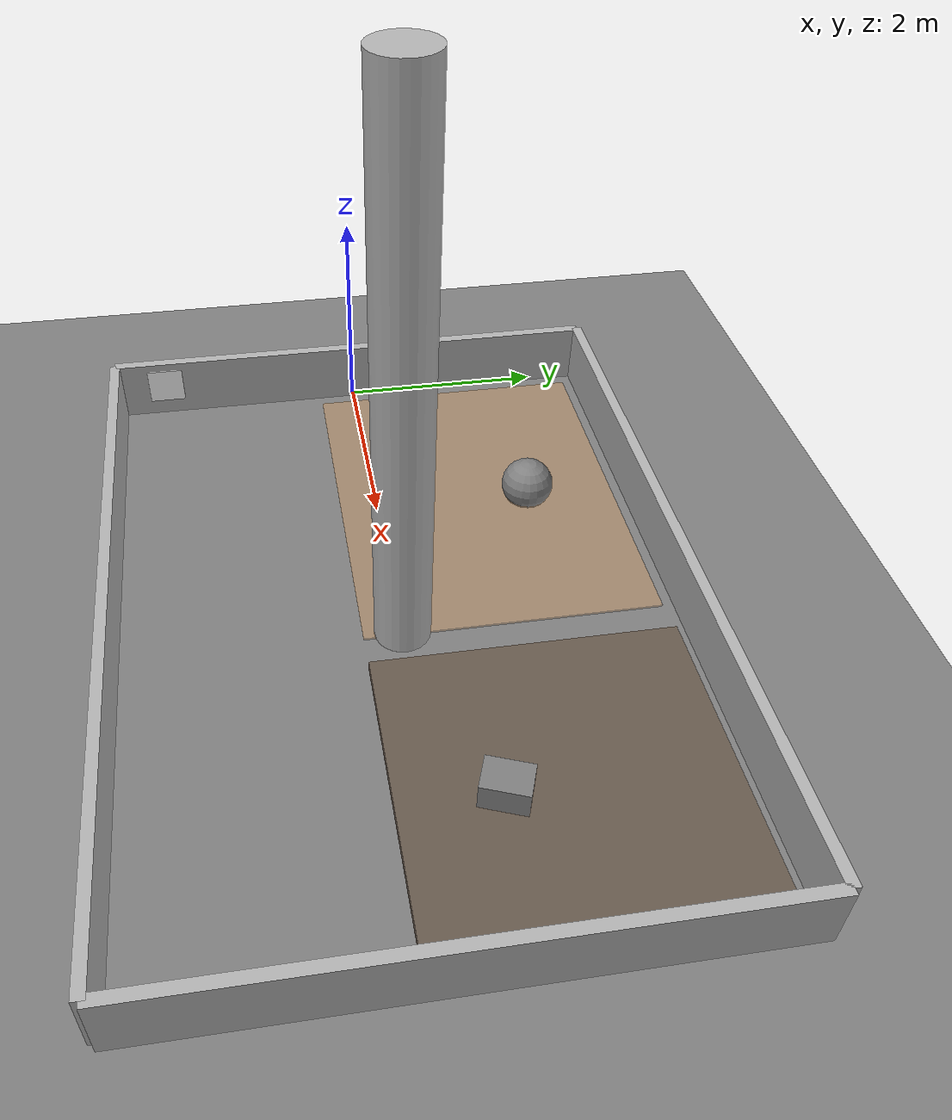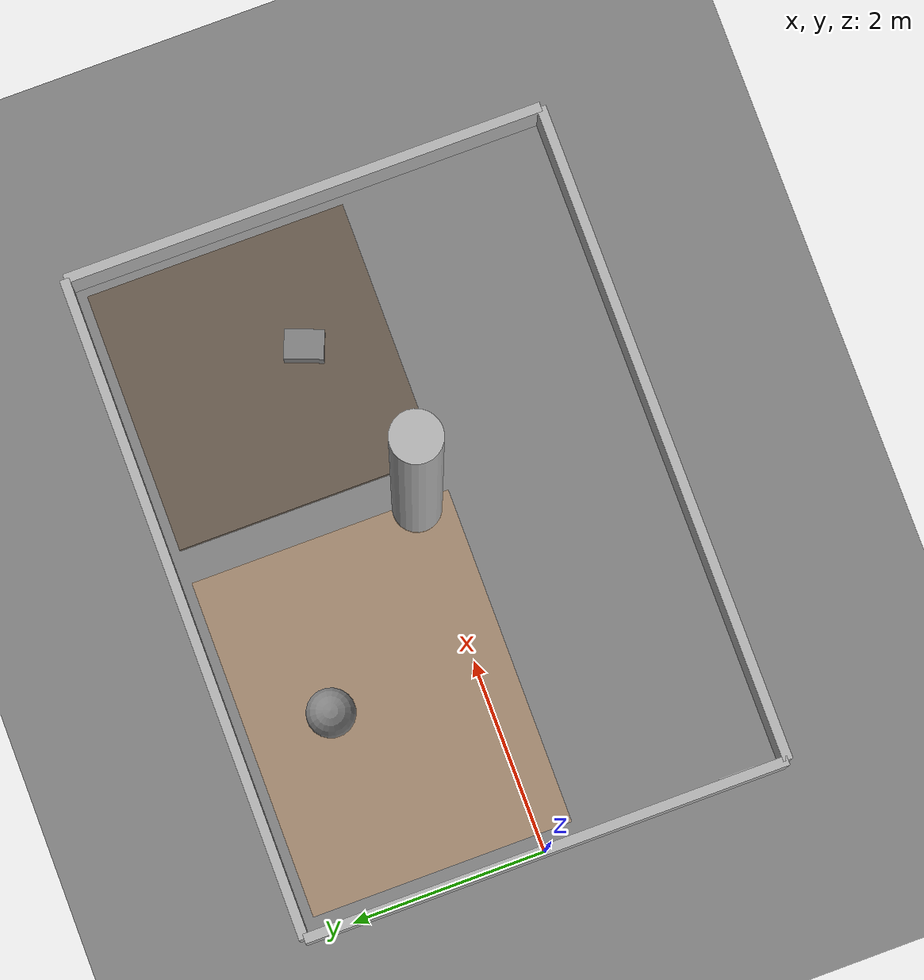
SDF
<?xml version="1.0" ?>
<sdf version="1.6">
  <world name="nasa_lunabotics_arena">

    <!-- Physics - Moon gravity -->
    <physics type="ode">
      <max_step_size>0.001</max_step_size>
      <real_time_factor>1.0</real_time_factor>
      <real_time_update_rate>1000</real_time_update_rate>
      <gravity>0 0 -1.62</gravity>
    </physics>

    <!-- Sun -->
    <include>
      <uri>model://sun</uri>
    </include>

    <!-- Lunar surface -->
    <model name="ground_plane">
      <static>true</static>
      <link name="link">
        <collision name="collision">
          <geometry>
            <plane>
              <normal>0 0 1</normal>
              <size>50 50</size>
            </plane>
          </geometry>
          <surface>
            <friction>
              <ode>
                <mu>0.8</mu>
                <mu2>0.8</mu2>
              </ode>
            </friction>
          </surface>
        </collision>
        <visual name="visual">
          <geometry>
            <plane>
              <normal>0 0 1</normal>
              <size>50 50</size>
            </plane>
          </geometry>
          <material>
            <ambient>0.4 0.4 0.4 1</ambient>
            <diffuse>0.5 0.5 0.5 1</diffuse>
          </material>
        </visual>
      </link>
    </model>

    <!-- Arena Frame -->
    <include>
      <uri>model://arena_frame_nasa</uri>
      <pose>0 0 0 0 0 0</pose>
    </include>

    <!-- AprilTag Board at starting zone -->
    <include>
      <uri>model://apriltag_board</uri>
      <pose>0.05 -2.0 0.34 0 1.57 0</pose>
    </include>

    <!-- Obstacle Zone Markers -->
    <model name="obstacle_zone_marker">
      <static>true</static>
      <pose>1.94 1.0 0.01 0 0 0</pose>
      <link name="link">
        <visual name="visual">
          <geometry>
            <box>
              <size>3.5 2.7 0.02</size>
            </box>
          </geometry>
          <material>
            <ambient>0.8 0.6 0.4 0.5</ambient>
            <diffuse>0.8 0.6 0.4 0.5</diffuse>
          </material>
        </visual>
      </link>
    </model>

    <!-- Excavation Zone (Regolith) -->
    <model name="excavation_zone">
      <static>true</static>
      <pose>5.38 1.0 0.05 0 0 0</pose>
      <link name="link">
        <collision name="collision">
          <geometry>
            <box>
              <size>2.7 2.7 0.1</size>
            </box>
          </geometry>
          <surface>
            <friction>
              <ode>
                <mu>1.2</mu>
                <mu2>1.2</mu2>
              </ode>
            </friction>
          </surface>
        </collision>
        <visual name="visual">
          <geometry>
            <box>
              <size>2.7 2.7 0.1</size>
            </box>
          </geometry>
          <material>
            <ambient>0.3 0.25 0.2 1</ambient>
            <diffuse>0.4 0.35 0.3 1</diffuse>
          </material>
        </visual>
      </link>
    </model>

    <!-- Obstacles -->
    <model name="rock_1">
      <static>true</static>
      <pose>2.0 1.5 0.15 0 0 0.5</pose>
      <link name="link">
        <collision name="collision">
          <geometry>
            <sphere>
              <radius>0.25</radius>
            </sphere>
          </geometry>
        </collision>
        <visual name="visual">
          <geometry>
            <sphere>
              <radius>0.25</radius>
            </sphere>
          </geometry>
          <material>
            <ambient>0.3 0.3 0.3 1</ambient>
            <diffuse>0.5 0.5 0.5 1</diffuse>
          </material>
        </visual>
      </link>
    </model>

    <model name="rock_2">
      <static>true</static>
      <pose>5.5 0.5 0.2 0 0 1.2</pose>
      <link name="link">
        <collision name="collision">
          <geometry>
            <box>
              <size>0.4 0.3 0.3</size>
            </box>
          </geometry>
        </collision>
        <visual name="visual">
          <geometry>
            <box>
              <size>0.4 0.3 0.3</size>
            </box>
          </geometry>
          <material>
            <ambient>0.35 0.35 0.35 1</ambient>
            <diffuse>0.5 0.5 0.5 1</diffuse>
          </material>
        </visual>
      </link>
    </model>

  </world>
</sdf>

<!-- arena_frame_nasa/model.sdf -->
<sdf version='1.7'>
  <model name='arena_frame_nasa'>
    <pose>0 0 0 0 0 0</pose>
    <static>true</static>

    <!-- Left Wall -->
    <link name='left_wall'>
      <pose>0 0 0.3 0 0 0</pose>
      <collision name='collision'>
        <geometry>
          <box>
            <size>0.1 5.0 0.6</size>
          </box>
        </geometry>
      </collision>
      <visual name='visual'>
        <geometry>
          <box>
            <size>0.1 5.0 0.6</size>
          </box>
        </geometry>
        <material>
          <ambient>0.7 0.7 0.7 1</ambient>
          <diffuse>0.7 0.7 0.7 1</diffuse>
        </material>
      </visual>
    </link>

    <!-- Right Wall -->
    <link name='right_wall'>
      <pose>6.88 0 0.3 0 0 0</pose>
      <collision name='collision'>
        <geometry>
          <box>
            <size>0.1 5.0 0.6</size>
          </box>
        </geometry>
      </collision>
      <visual name='visual'>
        <geometry>
          <box>
            <size>0.1 5.0 0.6</size>
          </box>
        </geometry>
        <material>
          <ambient>0.7 0.7 0.7 1</ambient>
          <diffuse>0.7 0.7 0.7 1</diffuse>
        </material>
      </visual>
    </link>

    <!-- Top Wall -->
    <link name='top_wall'>
      <pose>3.44 2.5 0.3 0 0 0</pose>
      <collision name='collision'>
        <geometry>
          <box>
            <size>6.88 0.1 0.6</size>
          </box>
        </geometry>
      </collision>
      <visual name='visual'>
        <geometry>
          <box>
            <size>6.88 0.1 0.6</size>
          </box>
        </geometry>
        <material>
          <ambient>0.7 0.7 0.7 1</ambient>
          <diffuse>0.7 0.7 0.7 1</diffuse>
        </material>
      </visual>
    </link>

    <!-- Bottom Wall -->
    <link name='bottom_wall'>
      <pose>3.44 -2.5 0.3 0 0 0</pose>
      <collision name='collision'>
        <geometry>
          <box>
            <size>6.88 0.1 0.6</size>
          </box>
        </geometry>
      </collision>
      <visual name='visual'>
        <geometry>
          <box>
            <size>6.88 0.1 0.6</size>
          </box>
        </geometry>
        <material>
          <ambient>0.7 0.7 0.7 1</ambient>
          <diffuse>0.7 0.7 0.7 1</diffuse>
        </material>
      </visual>
    </link>

    <!-- Center Pole -->
    <link name='center_pole'>
      <pose>3.63 0 2.5 0 0 0</pose>
      <collision name='collision'>
        <geometry>
          <cylinder>
            <radius>0.25</radius>
            <length>5.0</length>
          </cylinder>
        </geometry>
      </collision>
      <visual name='visual'>
        <geometry>
          <cylinder>
            <radius>0.25</radius>
            <length>5.0</length>
          </cylinder>
        </geometry>
        <material>
          <ambient>0.7 0.7 0.7 1</ambient>
          <diffuse>0.7 0.7 0.7 1</diffuse>
        </material>
      </visual>
    </link>
  </model>
</sdf>

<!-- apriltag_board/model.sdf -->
<sdf version='1.7'>
  <model name='apriltag_board'>
    <pose>0 0 0.5 0 1.57 0</pose>
    <static>true</static>

    <link name='board'>
      <visual name='visual'>
        <geometry>
          <box>
            <size>0.36 0.36 0.02</size>
          </box>
        </geometry>
        <material>
          <ambient>1 1 1 1</ambient>
          <diffuse>1 1 1 1</diffuse>
        </material>
      </visual>
      <collision name='collision'>
        <geometry>
          <box>
            <size>0.36 0.36 0.02</size>
          </box>
        </geometry>
      </collision>
    </link>
  </model>
</sdf>
